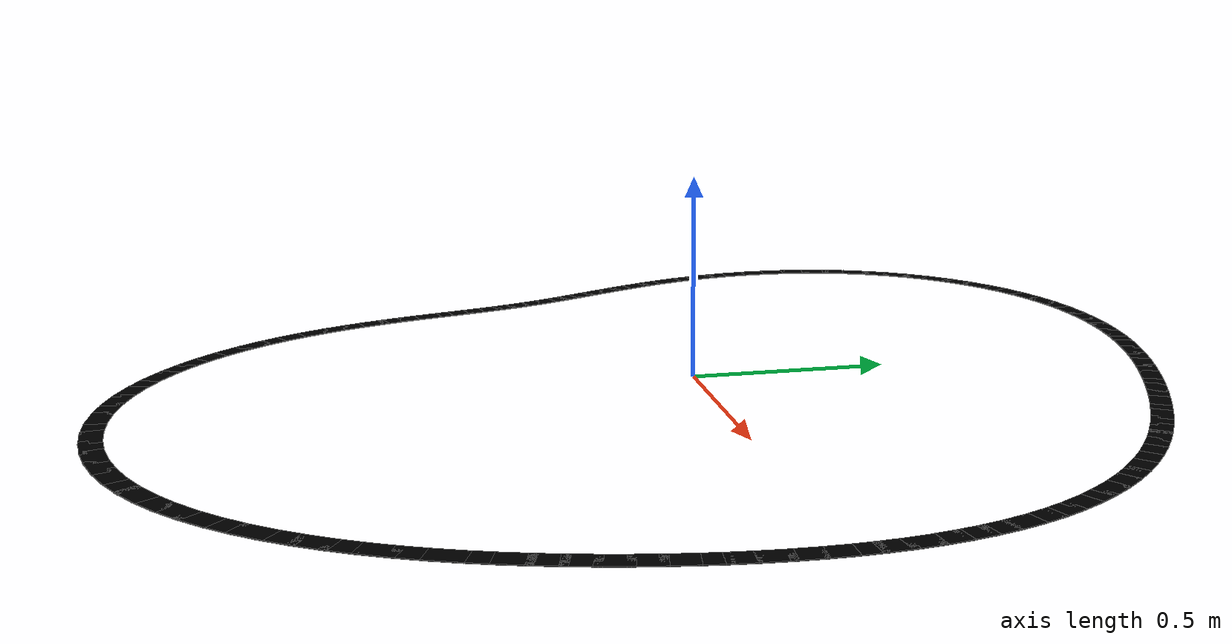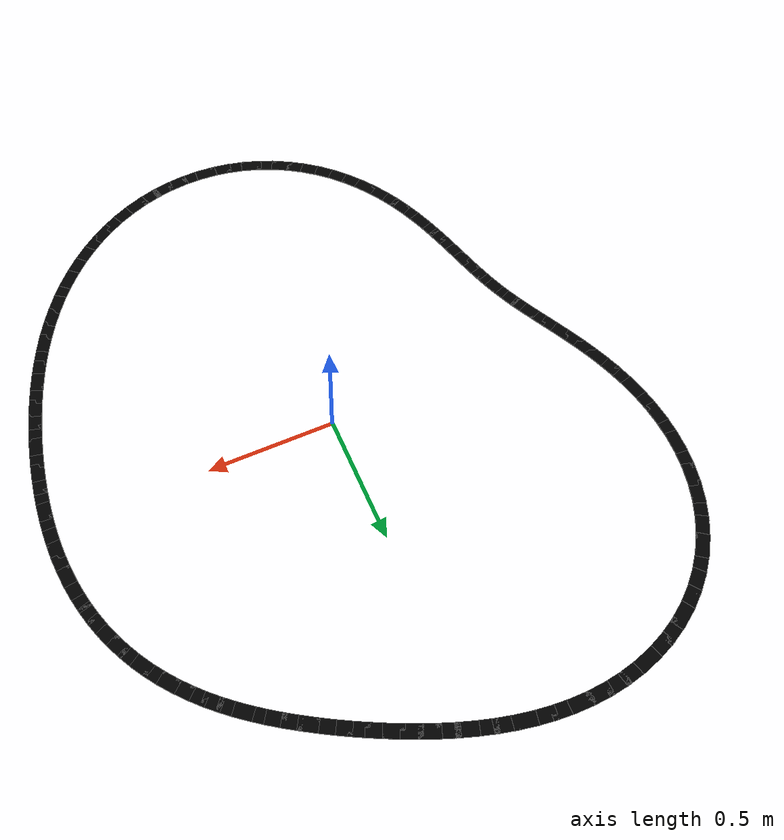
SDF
<?xml version="1.0"?>
<!-- GENERATED by scripts/generate_track.py — edit that script, not this file. -->
<sdf version="1.8">
  <model name="track_line">
    <static>true</static>
    <link name="link">
      <visual name="seg_0">
        <pose>1.1018 0.0271 0.003 0 0 1.5873</pose>
        <geometry>
          <box><size>0.0703 0.05 0.002</size></box>
        </geometry>
        <material>
          <ambient>0 0 0 1</ambient>
          <diffuse>0 0 0 1</diffuse>
        </material>
      </visual>
      <visual name="seg_1">
        <pose>1.0998 0.0811 0.003 0 0 1.6277</pose>
        <geometry>
          <box><size>0.0704 0.05 0.002</size></box>
        </geometry>
        <material>
          <ambient>0 0 0 1</ambient>
          <diffuse>0 0 0 1</diffuse>
        </material>
      </visual>
      <visual name="seg_2">
        <pose>1.0956 0.1351 0.003 0 0 1.6711</pose>
        <geometry>
          <box><size>0.0705 0.05 0.002</size></box>
        </geometry>
        <material>
          <ambient>0 0 0 1</ambient>
          <diffuse>0 0 0 1</diffuse>
        </material>
      </visual>
      <visual name="seg_3">
        <pose>1.0889 0.1890 0.003 0 0 1.7174</pose>
        <geometry>
          <box><size>0.0706 0.05 0.002</size></box>
        </geometry>
        <material>
          <ambient>0 0 0 1</ambient>
          <diffuse>0 0 0 1</diffuse>
        </material>
      </visual>
      <visual name="seg_4">
        <pose>1.0796 0.2425 0.003 0 0 1.7664</pose>
        <geometry>
          <box><size>0.0706 0.05 0.002</size></box>
        </geometry>
        <material>
          <ambient>0 0 0 1</ambient>
          <diffuse>0 0 0 1</diffuse>
        </material>
      </visual>
      <visual name="seg_5">
        <pose>1.0677 0.2955 0.003 0 0 1.8178</pose>
        <geometry>
          <box><size>0.0707 0.05 0.002</size></box>
        </geometry>
        <material>
          <ambient>0 0 0 1</ambient>
          <diffuse>0 0 0 1</diffuse>
        </material>
      </visual>
      <visual name="seg_6">
        <pose>1.0530 0.3479 0.003 0 0 1.8713</pose>
        <geometry>
          <box><size>0.0708 0.05 0.002</size></box>
        </geometry>
        <material>
          <ambient>0 0 0 1</ambient>
          <diffuse>0 0 0 1</diffuse>
        </material>
      </visual>
      <visual name="seg_7">
        <pose>1.0355 0.3994 0.003 0 0 1.9264</pose>
        <geometry>
          <box><size>0.0708 0.05 0.002</size></box>
        </geometry>
        <material>
          <ambient>0 0 0 1</ambient>
          <diffuse>0 0 0 1</diffuse>
        </material>
      </visual>
      <visual name="seg_8">
        <pose>1.0151 0.4499 0.003 0 0 1.9827</pose>
        <geometry>
          <box><size>0.0709 0.05 0.002</size></box>
        </geometry>
        <material>
          <ambient>0 0 0 1</ambient>
          <diffuse>0 0 0 1</diffuse>
        </material>
      </visual>
      <visual name="seg_9">
        <pose>0.9918 0.4992 0.003 0 0 2.0395</pose>
        <geometry>
          <box><size>0.0709 0.05 0.002</size></box>
        </geometry>
        <material>
          <ambient>0 0 0 1</ambient>
          <diffuse>0 0 0 1</diffuse>
        </material>
      </visual>
      <visual name="seg_10">
        <pose>0.9658 0.5471 0.003 0 0 2.0965</pose>
        <geometry>
          <box><size>0.0709 0.05 0.002</size></box>
        </geometry>
        <material>
          <ambient>0 0 0 1</ambient>
          <diffuse>0 0 0 1</diffuse>
        </material>
      </visual>
      <visual name="seg_11">
        <pose>0.9372 0.5935 0.003 0 0 2.1529</pose>
        <geometry>
          <box><size>0.0708 0.05 0.002</size></box>
        </geometry>
        <material>
          <ambient>0 0 0 1</ambient>
          <diffuse>0 0 0 1</diffuse>
        </material>
      </visual>
      <visual name="seg_12">
        <pose>0.9060 0.6381 0.003 0 0 2.2082</pose>
        <geometry>
          <box><size>0.0708 0.05 0.002</size></box>
        </geometry>
        <material>
          <ambient>0 0 0 1</ambient>
          <diffuse>0 0 0 1</diffuse>
        </material>
      </visual>
      <visual name="seg_13">
        <pose>0.8725 0.6809 0.003 0 0 2.2618</pose>
        <geometry>
          <box><size>0.0707 0.05 0.002</size></box>
        </geometry>
        <material>
          <ambient>0 0 0 1</ambient>
          <diffuse>0 0 0 1</diffuse>
        </material>
      </visual>
      <visual name="seg_14">
        <pose>0.8368 0.7218 0.003 0 0 2.3131</pose>
        <geometry>
          <box><size>0.0706 0.05 0.002</size></box>
        </geometry>
        <material>
          <ambient>0 0 0 1</ambient>
          <diffuse>0 0 0 1</diffuse>
        </material>
      </visual>
      <visual name="seg_15">
        <pose>0.7992 0.7609 0.003 0 0 2.3617</pose>
        <geometry>
          <box><size>0.0705 0.05 0.002</size></box>
        </geometry>
        <material>
          <ambient>0 0 0 1</ambient>
          <diffuse>0 0 0 1</diffuse>
        </material>
      </visual>
      <visual name="seg_16">
        <pose>0.7599 0.7981 0.003 0 0 2.4072</pose>
        <geometry>
          <box><size>0.0704 0.05 0.002</size></box>
        </geometry>
        <material>
          <ambient>0 0 0 1</ambient>
          <diffuse>0 0 0 1</diffuse>
        </material>
      </visual>
      <visual name="seg_17">
        <pose>0.7190 0.8335 0.003 0 0 2.4492</pose>
        <geometry>
          <box><size>0.0703 0.05 0.002</size></box>
        </geometry>
        <material>
          <ambient>0 0 0 1</ambient>
          <diffuse>0 0 0 1</diffuse>
        </material>
      </visual>
      <visual name="seg_18">
        <pose>0.6768 0.8672 0.003 0 0 2.4875</pose>
        <geometry>
          <box><size>0.0702 0.05 0.002</size></box>
        </geometry>
        <material>
          <ambient>0 0 0 1</ambient>
          <diffuse>0 0 0 1</diffuse>
        </material>
      </visual>
      <visual name="seg_19">
        <pose>0.6333 0.8993 0.003 0 0 2.5220</pose>
        <geometry>
          <box><size>0.0702 0.05 0.002</size></box>
        </geometry>
        <material>
          <ambient>0 0 0 1</ambient>
          <diffuse>0 0 0 1</diffuse>
        </material>
      </visual>
      <visual name="seg_20">
        <pose>0.5889 0.9300 0.003 0 0 2.5529</pose>
        <geometry>
          <box><size>0.0703 0.05 0.002</size></box>
        </geometry>
        <material>
          <ambient>0 0 0 1</ambient>
          <diffuse>0 0 0 1</diffuse>
        </material>
      </visual>
      <visual name="seg_21">
        <pose>0.5435 0.9594 0.003 0 0 2.5802</pose>
        <geometry>
          <box><size>0.0705 0.05 0.002</size></box>
        </geometry>
        <material>
          <ambient>0 0 0 1</ambient>
          <diffuse>0 0 0 1</diffuse>
        </material>
      </visual>
      <visual name="seg_22">
        <pose>0.4971 0.9877 0.003 0 0 2.6046</pose>
        <geometry>
          <box><size>0.0708 0.05 0.002</size></box>
        </geometry>
        <material>
          <ambient>0 0 0 1</ambient>
          <diffuse>0 0 0 1</diffuse>
        </material>
      </visual>
      <visual name="seg_23">
        <pose>0.4499 1.0152 0.003 0 0 2.6266</pose>
        <geometry>
          <box><size>0.0712 0.05 0.002</size></box>
        </geometry>
        <material>
          <ambient>0 0 0 1</ambient>
          <diffuse>0 0 0 1</diffuse>
        </material>
      </visual>
      <visual name="seg_24">
        <pose>0.4018 1.0418 0.003 0 0 2.6469</pose>
        <geometry>
          <box><size>0.0718 0.05 0.002</size></box>
        </geometry>
        <material>
          <ambient>0 0 0 1</ambient>
          <diffuse>0 0 0 1</diffuse>
        </material>
      </visual>
      <visual name="seg_25">
        <pose>0.3526 1.0677 0.003 0 0 2.6664</pose>
        <geometry>
          <box><size>0.0726 0.05 0.002</size></box>
        </geometry>
        <material>
          <ambient>0 0 0 1</ambient>
          <diffuse>0 0 0 1</diffuse>
        </material>
      </visual>
      <visual name="seg_26">
        <pose>0.3023 1.0929 0.003 0 0 2.6860</pose>
        <geometry>
          <box><size>0.0736 0.05 0.002</size></box>
        </geometry>
        <material>
          <ambient>0 0 0 1</ambient>
          <diffuse>0 0 0 1</diffuse>
        </material>
      </visual>
      <visual name="seg_27">
        <pose>0.2508 1.1175 0.003 0 0 2.7068</pose>
        <geometry>
          <box><size>0.0748 0.05 0.002</size></box>
        </geometry>
        <material>
          <ambient>0 0 0 1</ambient>
          <diffuse>0 0 0 1</diffuse>
        </material>
      </visual>
      <visual name="seg_28">
        <pose>0.1979 1.1413 0.003 0 0 2.7295</pose>
        <geometry>
          <box><size>0.0761 0.05 0.002</size></box>
        </geometry>
        <material>
          <ambient>0 0 0 1</ambient>
          <diffuse>0 0 0 1</diffuse>
        </material>
      </visual>
      <visual name="seg_29">
        <pose>0.1434 1.1643 0.003 0 0 2.7551</pose>
        <geometry>
          <box><size>0.0776 0.05 0.002</size></box>
        </geometry>
        <material>
          <ambient>0 0 0 1</ambient>
          <diffuse>0 0 0 1</diffuse>
        </material>
      </visual>
      <visual name="seg_30">
        <pose>0.0873 1.1862 0.003 0 0 2.7841</pose>
        <geometry>
          <box><size>0.0791 0.05 0.002</size></box>
        </geometry>
        <material>
          <ambient>0 0 0 1</ambient>
          <diffuse>0 0 0 1</diffuse>
        </material>
      </visual>
      <visual name="seg_31">
        <pose>0.0294 1.2067 0.003 0 0 2.8173</pose>
        <geometry>
          <box><size>0.0806 0.05 0.002</size></box>
        </geometry>
        <material>
          <ambient>0 0 0 1</ambient>
          <diffuse>0 0 0 1</diffuse>
        </material>
      </visual>
      <visual name="seg_32">
        <pose>-0.0303 1.2255 0.003 0 0 2.8549</pose>
        <geometry>
          <box><size>0.0822 0.05 0.002</size></box>
        </geometry>
        <material>
          <ambient>0 0 0 1</ambient>
          <diffuse>0 0 0 1</diffuse>
        </material>
      </visual>
      <visual name="seg_33">
        <pose>-0.0919 1.2423 0.003 0 0 2.8974</pose>
        <geometry>
          <box><size>0.0837 0.05 0.002</size></box>
        </geometry>
        <material>
          <ambient>0 0 0 1</ambient>
          <diffuse>0 0 0 1</diffuse>
        </material>
      </visual>
      <visual name="seg_34">
        <pose>-0.1552 1.2565 0.003 0 0 2.9449</pose>
        <geometry>
          <box><size>0.0851 0.05 0.002</size></box>
        </geometry>
        <material>
          <ambient>0 0 0 1</ambient>
          <diffuse>0 0 0 1</diffuse>
        </material>
      </visual>
      <visual name="seg_35">
        <pose>-0.2202 1.2676 0.003 0 0 2.9976</pose>
        <geometry>
          <box><size>0.0864 0.05 0.002</size></box>
        </geometry>
        <material>
          <ambient>0 0 0 1</ambient>
          <diffuse>0 0 0 1</diffuse>
        </material>
      </visual>
      <visual name="seg_36">
        <pose>-0.2866 1.2753 0.003 0 0 3.0554</pose>
        <geometry>
          <box><size>0.0875 0.05 0.002</size></box>
        </geometry>
        <material>
          <ambient>0 0 0 1</ambient>
          <diffuse>0 0 0 1</diffuse>
        </material>
      </visual>
      <visual name="seg_37">
        <pose>-0.3542 1.2790 0.003 0 0 3.1185</pose>
        <geometry>
          <box><size>0.0885 0.05 0.002</size></box>
        </geometry>
        <material>
          <ambient>0 0 0 1</ambient>
          <diffuse>0 0 0 1</diffuse>
        </material>
      </visual>
      <visual name="seg_38">
        <pose>-0.4225 1.2782 0.003 0 0 -3.0965</pose>
        <geometry>
          <box><size>0.0893 0.05 0.002</size></box>
        </geometry>
        <material>
          <ambient>0 0 0 1</ambient>
          <diffuse>0 0 0 1</diffuse>
        </material>
      </visual>
      <visual name="seg_39">
        <pose>-0.4911 1.2726 0.003 0 0 -3.0233</pose>
        <geometry>
          <box><size>0.0899 0.05 0.002</size></box>
        </geometry>
        <material>
          <ambient>0 0 0 1</ambient>
          <diffuse>0 0 0 1</diffuse>
        </material>
      </visual>
      <visual name="seg_40">
        <pose>-0.5595 1.2617 0.003 0 0 -2.9453</pose>
        <geometry>
          <box><size>0.0903 0.05 0.002</size></box>
        </geometry>
        <material>
          <ambient>0 0 0 1</ambient>
          <diffuse>0 0 0 1</diffuse>
        </material>
      </visual>
      <visual name="seg_41">
        <pose>-0.6270 1.2454 0.003 0 0 -2.8627</pose>
        <geometry>
          <box><size>0.0906 0.05 0.002</size></box>
        </geometry>
        <material>
          <ambient>0 0 0 1</ambient>
          <diffuse>0 0 0 1</diffuse>
        </material>
      </visual>
      <visual name="seg_42">
        <pose>-0.6931 1.2233 0.003 0 0 -2.7758</pose>
        <geometry>
          <box><size>0.0908 0.05 0.002</size></box>
        </geometry>
        <material>
          <ambient>0 0 0 1</ambient>
          <diffuse>0 0 0 1</diffuse>
        </material>
      </visual>
      <visual name="seg_43">
        <pose>-0.7571 1.1954 0.003 0 0 -2.6852</pose>
        <geometry>
          <box><size>0.0908 0.05 0.002</size></box>
        </geometry>
        <material>
          <ambient>0 0 0 1</ambient>
          <diffuse>0 0 0 1</diffuse>
        </material>
      </visual>
      <visual name="seg_44">
        <pose>-0.8182 1.1617 0.003 0 0 -2.5912</pose>
        <geometry>
          <box><size>0.0909 0.05 0.002</size></box>
        </geometry>
        <material>
          <ambient>0 0 0 1</ambient>
          <diffuse>0 0 0 1</diffuse>
        </material>
      </visual>
      <visual name="seg_45">
        <pose>-0.8759 1.1224 0.003 0 0 -2.4946</pose>
        <geometry>
          <box><size>0.0909 0.05 0.002</size></box>
        </geometry>
        <material>
          <ambient>0 0 0 1</ambient>
          <diffuse>0 0 0 1</diffuse>
        </material>
      </visual>
      <visual name="seg_46">
        <pose>-0.9295 1.0776 0.003 0 0 -2.3962</pose>
        <geometry>
          <box><size>0.0909 0.05 0.002</size></box>
        </geometry>
        <material>
          <ambient>0 0 0 1</ambient>
          <diffuse>0 0 0 1</diffuse>
        </material>
      </visual>
      <visual name="seg_47">
        <pose>-0.9784 1.0277 0.003 0 0 -2.2965</pose>
        <geometry>
          <box><size>0.0909 0.05 0.002</size></box>
        </geometry>
        <material>
          <ambient>0 0 0 1</ambient>
          <diffuse>0 0 0 1</diffuse>
        </material>
      </visual>
      <visual name="seg_48">
        <pose>-1.0221 0.9733 0.003 0 0 -2.1967</pose>
        <geometry>
          <box><size>0.0909 0.05 0.002</size></box>
        </geometry>
        <material>
          <ambient>0 0 0 1</ambient>
          <diffuse>0 0 0 1</diffuse>
        </material>
      </visual>
      <visual name="seg_49">
        <pose>-1.0601 0.9147 0.003 0 0 -2.0973</pose>
        <geometry>
          <box><size>0.0909 0.05 0.002</size></box>
        </geometry>
        <material>
          <ambient>0 0 0 1</ambient>
          <diffuse>0 0 0 1</diffuse>
        </material>
      </visual>
      <visual name="seg_50">
        <pose>-1.0922 0.8526 0.003 0 0 -1.9994</pose>
        <geometry>
          <box><size>0.0909 0.05 0.002</size></box>
        </geometry>
        <material>
          <ambient>0 0 0 1</ambient>
          <diffuse>0 0 0 1</diffuse>
        </material>
      </visual>
      <visual name="seg_51">
        <pose>-1.1182 0.7878 0.003 0 0 -1.9036</pose>
        <geometry>
          <box><size>0.0909 0.05 0.002</size></box>
        </geometry>
        <material>
          <ambient>0 0 0 1</ambient>
          <diffuse>0 0 0 1</diffuse>
        </material>
      </visual>
      <visual name="seg_52">
        <pose>-1.1379 0.7209 0.003 0 0 -1.8107</pose>
        <geometry>
          <box><size>0.0907 0.05 0.002</size></box>
        </geometry>
        <material>
          <ambient>0 0 0 1</ambient>
          <diffuse>0 0 0 1</diffuse>
        </material>
      </visual>
      <visual name="seg_53">
        <pose>-1.1514 0.6526 0.003 0 0 -1.7214</pose>
        <geometry>
          <box><size>0.0904 0.05 0.002</size></box>
        </geometry>
        <material>
          <ambient>0 0 0 1</ambient>
          <diffuse>0 0 0 1</diffuse>
        </material>
      </visual>
      <visual name="seg_54">
        <pose>-1.1589 0.5837 0.003 0 0 -1.6360</pose>
        <geometry>
          <box><size>0.0900 0.05 0.002</size></box>
        </geometry>
        <material>
          <ambient>0 0 0 1</ambient>
          <diffuse>0 0 0 1</diffuse>
        </material>
      </visual>
      <visual name="seg_55">
        <pose>-1.1606 0.5148 0.003 0 0 -1.5552</pose>
        <geometry>
          <box><size>0.0893 0.05 0.002</size></box>
        </geometry>
        <material>
          <ambient>0 0 0 1</ambient>
          <diffuse>0 0 0 1</diffuse>
        </material>
      </visual>
      <visual name="seg_56">
        <pose>-1.1570 0.4467 0.003 0 0 -1.4794</pose>
        <geometry>
          <box><size>0.0883 0.05 0.002</size></box>
        </geometry>
        <material>
          <ambient>0 0 0 1</ambient>
          <diffuse>0 0 0 1</diffuse>
        </material>
      </visual>
      <visual name="seg_57">
        <pose>-1.1485 0.3798 0.003 0 0 -1.4089</pose>
        <geometry>
          <box><size>0.0871 0.05 0.002</size></box>
        </geometry>
        <material>
          <ambient>0 0 0 1</ambient>
          <diffuse>0 0 0 1</diffuse>
        </material>
      </visual>
      <visual name="seg_58">
        <pose>-1.1357 0.3147 0.003 0 0 -1.3442</pose>
        <geometry>
          <box><size>0.0855 0.05 0.002</size></box>
        </geometry>
        <material>
          <ambient>0 0 0 1</ambient>
          <diffuse>0 0 0 1</diffuse>
        </material>
      </visual>
      <visual name="seg_59">
        <pose>-1.1192 0.2517 0.003 0 0 -1.2858</pose>
        <geometry>
          <box><size>0.0837 0.05 0.002</size></box>
        </geometry>
        <material>
          <ambient>0 0 0 1</ambient>
          <diffuse>0 0 0 1</diffuse>
        </material>
      </visual>
      <visual name="seg_60">
        <pose>-1.0998 0.1912 0.003 0 0 -1.2340</pose>
        <geometry>
          <box><size>0.0816 0.05 0.002</size></box>
        </geometry>
        <material>
          <ambient>0 0 0 1</ambient>
          <diffuse>0 0 0 1</diffuse>
        </material>
      </visual>
      <visual name="seg_61">
        <pose>-1.0781 0.1333 0.003 0 0 -1.1894</pose>
        <geometry>
          <box><size>0.0792 0.05 0.002</size></box>
        </geometry>
        <material>
          <ambient>0 0 0 1</ambient>
          <diffuse>0 0 0 1</diffuse>
        </material>
      </visual>
      <visual name="seg_62">
        <pose>-1.0548 0.0781 0.003 0 0 -1.1527</pose>
        <geometry>
          <box><size>0.0766 0.05 0.002</size></box>
        </geometry>
        <material>
          <ambient>0 0 0 1</ambient>
          <diffuse>0 0 0 1</diffuse>
        </material>
      </visual>
      <visual name="seg_63">
        <pose>-1.0306 0.0256 0.003 0 0 -1.1244</pose>
        <geometry>
          <box><size>0.0738 0.05 0.002</size></box>
        </geometry>
        <material>
          <ambient>0 0 0 1</ambient>
          <diffuse>0 0 0 1</diffuse>
        </material>
      </visual>
      <visual name="seg_64">
        <pose>-1.0061 -0.0244 0.003 0 0 -1.1052</pose>
        <geometry>
          <box><size>0.0710 0.05 0.002</size></box>
        </geometry>
        <material>
          <ambient>0 0 0 1</ambient>
          <diffuse>0 0 0 1</diffuse>
        </material>
      </visual>
      <visual name="seg_65">
        <pose>-0.9818 -0.0722 0.003 0 0 -1.0956</pose>
        <geometry>
          <box><size>0.0683 0.05 0.002</size></box>
        </geometry>
        <material>
          <ambient>0 0 0 1</ambient>
          <diffuse>0 0 0 1</diffuse>
        </material>
      </visual>
      <visual name="seg_66">
        <pose>-0.9582 -0.1180 0.003 0 0 -1.0960</pose>
        <geometry>
          <box><size>0.0657 0.05 0.002</size></box>
        </geometry>
        <material>
          <ambient>0 0 0 1</ambient>
          <diffuse>0 0 0 1</diffuse>
        </material>
      </visual>
      <visual name="seg_67">
        <pose>-0.9358 -0.1622 0.003 0 0 -1.1060</pose>
        <geometry>
          <box><size>0.0633 0.05 0.002</size></box>
        </geometry>
        <material>
          <ambient>0 0 0 1</ambient>
          <diffuse>0 0 0 1</diffuse>
        </material>
      </visual>
      <visual name="seg_68">
        <pose>-0.9147 -0.2053 0.003 0 0 -1.1251</pose>
        <geometry>
          <box><size>0.0614 0.05 0.002</size></box>
        </geometry>
        <material>
          <ambient>0 0 0 1</ambient>
          <diffuse>0 0 0 1</diffuse>
        </material>
      </visual>
      <visual name="seg_69">
        <pose>-0.8951 -0.2476 0.003 0 0 -1.1515</pose>
        <geometry>
          <box><size>0.0599 0.05 0.002</size></box>
        </geometry>
        <material>
          <ambient>0 0 0 1</ambient>
          <diffuse>0 0 0 1</diffuse>
        </material>
      </visual>
      <visual name="seg_70">
        <pose>-0.8771 -0.2897 0.003 0 0 -1.1827</pose>
        <geometry>
          <box><size>0.0591 0.05 0.002</size></box>
        </geometry>
        <material>
          <ambient>0 0 0 1</ambient>
          <diffuse>0 0 0 1</diffuse>
        </material>
      </visual>
      <visual name="seg_71">
        <pose>-0.8606 -0.3320 0.003 0 0 -1.2157</pose>
        <geometry>
          <box><size>0.0589 0.05 0.002</size></box>
        </geometry>
        <material>
          <ambient>0 0 0 1</ambient>
          <diffuse>0 0 0 1</diffuse>
        </material>
      </visual>
      <visual name="seg_72">
        <pose>-0.8455 -0.3749 0.003 0 0 -1.2470</pose>
        <geometry>
          <box><size>0.0593 0.05 0.002</size></box>
        </geometry>
        <material>
          <ambient>0 0 0 1</ambient>
          <diffuse>0 0 0 1</diffuse>
        </material>
      </visual>
      <visual name="seg_73">
        <pose>-0.8315 -0.4186 0.003 0 0 -1.2736</pose>
        <geometry>
          <box><size>0.0603 0.05 0.002</size></box>
        </geometry>
        <material>
          <ambient>0 0 0 1</ambient>
          <diffuse>0 0 0 1</diffuse>
        </material>
      </visual>
      <visual name="seg_74">
        <pose>-0.8182 -0.4636 0.003 0 0 -1.2928</pose>
        <geometry>
          <box><size>0.0618 0.05 0.002</size></box>
        </geometry>
        <material>
          <ambient>0 0 0 1</ambient>
          <diffuse>0 0 0 1</diffuse>
        </material>
      </visual>
      <visual name="seg_75">
        <pose>-0.8052 -0.5101 0.003 0 0 -1.3033</pose>
        <geometry>
          <box><size>0.0636 0.05 0.002</size></box>
        </geometry>
        <material>
          <ambient>0 0 0 1</ambient>
          <diffuse>0 0 0 1</diffuse>
        </material>
      </visual>
      <visual name="seg_76">
        <pose>-0.7921 -0.5581 0.003 0 0 -1.3041</pose>
        <geometry>
          <box><size>0.0658 0.05 0.002</size></box>
        </geometry>
        <material>
          <ambient>0 0 0 1</ambient>
          <diffuse>0 0 0 1</diffuse>
        </material>
      </visual>
      <visual name="seg_77">
        <pose>-0.7783 -0.6077 0.003 0 0 -1.2954</pose>
        <geometry>
          <box><size>0.0681 0.05 0.002</size></box>
        </geometry>
        <material>
          <ambient>0 0 0 1</ambient>
          <diffuse>0 0 0 1</diffuse>
        </material>
      </visual>
      <visual name="seg_78">
        <pose>-0.7633 -0.6588 0.003 0 0 -1.2773</pose>
        <geometry>
          <box><size>0.0704 0.05 0.002</size></box>
        </geometry>
        <material>
          <ambient>0 0 0 1</ambient>
          <diffuse>0 0 0 1</diffuse>
        </material>
      </visual>
      <visual name="seg_79">
        <pose>-0.7467 -0.7113 0.003 0 0 -1.2505</pose>
        <geometry>
          <box><size>0.0728 0.05 0.002</size></box>
        </geometry>
        <material>
          <ambient>0 0 0 1</ambient>
          <diffuse>0 0 0 1</diffuse>
        </material>
      </visual>
      <visual name="seg_80">
        <pose>-0.7278 -0.7649 0.003 0 0 -1.2158</pose>
        <geometry>
          <box><size>0.0750 0.05 0.002</size></box>
        </geometry>
        <material>
          <ambient>0 0 0 1</ambient>
          <diffuse>0 0 0 1</diffuse>
        </material>
      </visual>
      <visual name="seg_81">
        <pose>-0.7063 -0.8193 0.003 0 0 -1.1739</pose>
        <geometry>
          <box><size>0.0771 0.05 0.002</size></box>
        </geometry>
        <material>
          <ambient>0 0 0 1</ambient>
          <diffuse>0 0 0 1</diffuse>
        </material>
      </visual>
      <visual name="seg_82">
        <pose>-0.6818 -0.8741 0.003 0 0 -1.1254</pose>
        <geometry>
          <box><size>0.0791 0.05 0.002</size></box>
        </geometry>
        <material>
          <ambient>0 0 0 1</ambient>
          <diffuse>0 0 0 1</diffuse>
        </material>
      </visual>
      <visual name="seg_83">
        <pose>-0.6538 -0.9289 0.003 0 0 -1.0710</pose>
        <geometry>
          <box><size>0.0808 0.05 0.002</size></box>
        </geometry>
        <material>
          <ambient>0 0 0 1</ambient>
          <diffuse>0 0 0 1</diffuse>
        </material>
      </visual>
      <visual name="seg_84">
        <pose>-0.6221 -0.9830 0.003 0 0 -1.0113</pose>
        <geometry>
          <box><size>0.0823 0.05 0.002</size></box>
        </geometry>
        <material>
          <ambient>0 0 0 1</ambient>
          <diffuse>0 0 0 1</diffuse>
        </material>
      </visual>
      <visual name="seg_85">
        <pose>-0.5865 -1.0359 0.003 0 0 -0.9469</pose>
        <geometry>
          <box><size>0.0836 0.05 0.002</size></box>
        </geometry>
        <material>
          <ambient>0 0 0 1</ambient>
          <diffuse>0 0 0 1</diffuse>
        </material>
      </visual>
      <visual name="seg_86">
        <pose>-0.5468 -1.0871 0.003 0 0 -0.8782</pose>
        <geometry>
          <box><size>0.0848 0.05 0.002</size></box>
        </geometry>
        <material>
          <ambient>0 0 0 1</ambient>
          <diffuse>0 0 0 1</diffuse>
        </material>
      </visual>
      <visual name="seg_87">
        <pose>-0.5032 -1.1360 0.003 0 0 -0.8056</pose>
        <geometry>
          <box><size>0.0857 0.05 0.002</size></box>
        </geometry>
        <material>
          <ambient>0 0 0 1</ambient>
          <diffuse>0 0 0 1</diffuse>
        </material>
      </visual>
      <visual name="seg_88">
        <pose>-0.4556 -1.1819 0.003 0 0 -0.7297</pose>
        <geometry>
          <box><size>0.0864 0.05 0.002</size></box>
        </geometry>
        <material>
          <ambient>0 0 0 1</ambient>
          <diffuse>0 0 0 1</diffuse>
        </material>
      </visual>
      <visual name="seg_89">
        <pose>-0.4042 -1.2243 0.003 0 0 -0.6508</pose>
        <geometry>
          <box><size>0.0870 0.05 0.002</size></box>
        </geometry>
        <material>
          <ambient>0 0 0 1</ambient>
          <diffuse>0 0 0 1</diffuse>
        </material>
      </visual>
      <visual name="seg_90">
        <pose>-0.3492 -1.2628 0.003 0 0 -0.5693</pose>
        <geometry>
          <box><size>0.0875 0.05 0.002</size></box>
        </geometry>
        <material>
          <ambient>0 0 0 1</ambient>
          <diffuse>0 0 0 1</diffuse>
        </material>
      </visual>
      <visual name="seg_91">
        <pose>-0.2910 -1.2967 0.003 0 0 -0.4858</pose>
        <geometry>
          <box><size>0.0879 0.05 0.002</size></box>
        </geometry>
        <material>
          <ambient>0 0 0 1</ambient>
          <diffuse>0 0 0 1</diffuse>
        </material>
      </visual>
      <visual name="seg_92">
        <pose>-0.2298 -1.3257 0.003 0 0 -0.4006</pose>
        <geometry>
          <box><size>0.0882 0.05 0.002</size></box>
        </geometry>
        <material>
          <ambient>0 0 0 1</ambient>
          <diffuse>0 0 0 1</diffuse>
        </material>
      </visual>
      <visual name="seg_93">
        <pose>-0.1663 -1.3494 0.003 0 0 -0.3142</pose>
        <geometry>
          <box><size>0.0884 0.05 0.002</size></box>
        </geometry>
        <material>
          <ambient>0 0 0 1</ambient>
          <diffuse>0 0 0 1</diffuse>
        </material>
      </visual>
      <visual name="seg_94">
        <pose>-0.1008 -1.3676 0.003 0 0 -0.2270</pose>
        <geometry>
          <box><size>0.0886 0.05 0.002</size></box>
        </geometry>
        <material>
          <ambient>0 0 0 1</ambient>
          <diffuse>0 0 0 1</diffuse>
        </material>
      </visual>
      <visual name="seg_95">
        <pose>-0.0338 -1.3800 0.003 0 0 -0.1395</pose>
        <geometry>
          <box><size>0.0887 0.05 0.002</size></box>
        </geometry>
        <material>
          <ambient>0 0 0 1</ambient>
          <diffuse>0 0 0 1</diffuse>
        </material>
      </visual>
      <visual name="seg_96">
        <pose>0.0341 -1.3865 0.003 0 0 -0.0521</pose>
        <geometry>
          <box><size>0.0888 0.05 0.002</size></box>
        </geometry>
        <material>
          <ambient>0 0 0 1</ambient>
          <diffuse>0 0 0 1</diffuse>
        </material>
      </visual>
      <visual name="seg_97">
        <pose>0.1024 -1.3871 0.003 0 0 0.0348</pose>
        <geometry>
          <box><size>0.0888 0.05 0.002</size></box>
        </geometry>
        <material>
          <ambient>0 0 0 1</ambient>
          <diffuse>0 0 0 1</diffuse>
        </material>
      </visual>
      <visual name="seg_98">
        <pose>0.1704 -1.3818 0.003 0 0 0.1207</pose>
        <geometry>
          <box><size>0.0889 0.05 0.002</size></box>
        </geometry>
        <material>
          <ambient>0 0 0 1</ambient>
          <diffuse>0 0 0 1</diffuse>
        </material>
      </visual>
      <visual name="seg_99">
        <pose>0.2378 -1.3707 0.003 0 0 0.2053</pose>
        <geometry>
          <box><size>0.0888 0.05 0.002</size></box>
        </geometry>
        <material>
          <ambient>0 0 0 1</ambient>
          <diffuse>0 0 0 1</diffuse>
        </material>
      </visual>
      <visual name="seg_100">
        <pose>0.3040 -1.3541 0.003 0 0 0.2883</pose>
        <geometry>
          <box><size>0.0888 0.05 0.002</size></box>
        </geometry>
        <material>
          <ambient>0 0 0 1</ambient>
          <diffuse>0 0 0 1</diffuse>
        </material>
      </visual>
      <visual name="seg_101">
        <pose>0.3685 -1.3320 0.003 0 0 0.3693</pose>
        <geometry>
          <box><size>0.0887 0.05 0.002</size></box>
        </geometry>
        <material>
          <ambient>0 0 0 1</ambient>
          <diffuse>0 0 0 1</diffuse>
        </material>
      </visual>
      <visual name="seg_102">
        <pose>0.4310 -1.3050 0.003 0 0 0.4481</pose>
        <geometry>
          <box><size>0.0885 0.05 0.002</size></box>
        </geometry>
        <material>
          <ambient>0 0 0 1</ambient>
          <diffuse>0 0 0 1</diffuse>
        </material>
      </visual>
      <visual name="seg_103">
        <pose>0.4910 -1.2733 0.003 0 0 0.5243</pose>
        <geometry>
          <box><size>0.0882 0.05 0.002</size></box>
        </geometry>
        <material>
          <ambient>0 0 0 1</ambient>
          <diffuse>0 0 0 1</diffuse>
        </material>
      </visual>
      <visual name="seg_104">
        <pose>0.5483 -1.2373 0.003 0 0 0.5979</pose>
        <geometry>
          <box><size>0.0878 0.05 0.002</size></box>
        </geometry>
        <material>
          <ambient>0 0 0 1</ambient>
          <diffuse>0 0 0 1</diffuse>
        </material>
      </visual>
      <visual name="seg_105">
        <pose>0.6026 -1.1975 0.003 0 0 0.6686</pose>
        <geometry>
          <box><size>0.0873 0.05 0.002</size></box>
        </geometry>
        <material>
          <ambient>0 0 0 1</ambient>
          <diffuse>0 0 0 1</diffuse>
        </material>
      </visual>
      <visual name="seg_106">
        <pose>0.6537 -1.1542 0.003 0 0 0.7362</pose>
        <geometry>
          <box><size>0.0868 0.05 0.002</size></box>
        </geometry>
        <material>
          <ambient>0 0 0 1</ambient>
          <diffuse>0 0 0 1</diffuse>
        </material>
      </visual>
      <visual name="seg_107">
        <pose>0.7014 -1.1080 0.003 0 0 0.8007</pose>
        <geometry>
          <box><size>0.0861 0.05 0.002</size></box>
        </geometry>
        <material>
          <ambient>0 0 0 1</ambient>
          <diffuse>0 0 0 1</diffuse>
        </material>
      </visual>
      <visual name="seg_108">
        <pose>0.7459 -1.0594 0.003 0 0 0.8619</pose>
        <geometry>
          <box><size>0.0853 0.05 0.002</size></box>
        </geometry>
        <material>
          <ambient>0 0 0 1</ambient>
          <diffuse>0 0 0 1</diffuse>
        </material>
      </visual>
      <visual name="seg_109">
        <pose>0.7869 -1.0086 0.003 0 0 0.9197</pose>
        <geometry>
          <box><size>0.0844 0.05 0.002</size></box>
        </geometry>
        <material>
          <ambient>0 0 0 1</ambient>
          <diffuse>0 0 0 1</diffuse>
        </material>
      </visual>
      <visual name="seg_110">
        <pose>0.8246 -0.9563 0.003 0 0 0.9740</pose>
        <geometry>
          <box><size>0.0834 0.05 0.002</size></box>
        </geometry>
        <material>
          <ambient>0 0 0 1</ambient>
          <diffuse>0 0 0 1</diffuse>
        </material>
      </visual>
      <visual name="seg_111">
        <pose>0.8591 -0.9026 0.003 0 0 1.0249</pose>
        <geometry>
          <box><size>0.0824 0.05 0.002</size></box>
        </geometry>
        <material>
          <ambient>0 0 0 1</ambient>
          <diffuse>0 0 0 1</diffuse>
        </material>
      </visual>
      <visual name="seg_112">
        <pose>0.8905 -0.8481 0.003 0 0 1.0724</pose>
        <geometry>
          <box><size>0.0813 0.05 0.002</size></box>
        </geometry>
        <material>
          <ambient>0 0 0 1</ambient>
          <diffuse>0 0 0 1</diffuse>
        </material>
      </visual>
      <visual name="seg_113">
        <pose>0.9190 -0.7930 0.003 0 0 1.1164</pose>
        <geometry>
          <box><size>0.0801 0.05 0.002</size></box>
        </geometry>
        <material>
          <ambient>0 0 0 1</ambient>
          <diffuse>0 0 0 1</diffuse>
        </material>
      </visual>
      <visual name="seg_114">
        <pose>0.9447 -0.7375 0.003 0 0 1.1571</pose>
        <geometry>
          <box><size>0.0789 0.05 0.002</size></box>
        </geometry>
        <material>
          <ambient>0 0 0 1</ambient>
          <diffuse>0 0 0 1</diffuse>
        </material>
      </visual>
      <visual name="seg_115">
        <pose>0.9679 -0.6819 0.003 0 0 1.1946</pose>
        <geometry>
          <box><size>0.0777 0.05 0.002</size></box>
        </geometry>
        <material>
          <ambient>0 0 0 1</ambient>
          <diffuse>0 0 0 1</diffuse>
        </material>
      </visual>
      <visual name="seg_116">
        <pose>0.9887 -0.6263 0.003 0 0 1.2292</pose>
        <geometry>
          <box><size>0.0766 0.05 0.002</size></box>
        </geometry>
        <material>
          <ambient>0 0 0 1</ambient>
          <diffuse>0 0 0 1</diffuse>
        </material>
      </visual>
      <visual name="seg_117">
        <pose>1.0074 -0.5709 0.003 0 0 1.2612</pose>
        <geometry>
          <box><size>0.0755 0.05 0.002</size></box>
        </geometry>
        <material>
          <ambient>0 0 0 1</ambient>
          <diffuse>0 0 0 1</diffuse>
        </material>
      </visual>
      <visual name="seg_118">
        <pose>1.0242 -0.5157 0.003 0 0 1.2910</pose>
        <geometry>
          <box><size>0.0745 0.05 0.002</size></box>
        </geometry>
        <material>
          <ambient>0 0 0 1</ambient>
          <diffuse>0 0 0 1</diffuse>
        </material>
      </visual>
      <visual name="seg_119">
        <pose>1.0392 -0.4608 0.003 0 0 1.3191</pose>
        <geometry>
          <box><size>0.0736 0.05 0.002</size></box>
        </geometry>
        <material>
          <ambient>0 0 0 1</ambient>
          <diffuse>0 0 0 1</diffuse>
        </material>
      </visual>
      <visual name="seg_120">
        <pose>1.0525 -0.4061 0.003 0 0 1.3459</pose>
        <geometry>
          <box><size>0.0727 0.05 0.002</size></box>
        </geometry>
        <material>
          <ambient>0 0 0 1</ambient>
          <diffuse>0 0 0 1</diffuse>
        </material>
      </visual>
      <visual name="seg_121">
        <pose>1.0642 -0.3516 0.003 0 0 1.3721</pose>
        <geometry>
          <box><size>0.0721 0.05 0.002</size></box>
        </geometry>
        <material>
          <ambient>0 0 0 1</ambient>
          <diffuse>0 0 0 1</diffuse>
        </material>
      </visual>
      <visual name="seg_122">
        <pose>1.0743 -0.2974 0.003 0 0 1.3984</pose>
        <geometry>
          <box><size>0.0715 0.05 0.002</size></box>
        </geometry>
        <material>
          <ambient>0 0 0 1</ambient>
          <diffuse>0 0 0 1</diffuse>
        </material>
      </visual>
      <visual name="seg_123">
        <pose>1.0830 -0.2433 0.003 0 0 1.4252</pose>
        <geometry>
          <box><size>0.0710 0.05 0.002</size></box>
        </geometry>
        <material>
          <ambient>0 0 0 1</ambient>
          <diffuse>0 0 0 1</diffuse>
        </material>
      </visual>
      <visual name="seg_124">
        <pose>1.0902 -0.1892 0.003 0 0 1.4533</pose>
        <geometry>
          <box><size>0.0707 0.05 0.002</size></box>
        </geometry>
        <material>
          <ambient>0 0 0 1</ambient>
          <diffuse>0 0 0 1</diffuse>
        </material>
      </visual>
      <visual name="seg_125">
        <pose>1.0957 -0.1352 0.003 0 0 1.4832</pose>
        <geometry>
          <box><size>0.0705 0.05 0.002</size></box>
        </geometry>
        <material>
          <ambient>0 0 0 1</ambient>
          <diffuse>0 0 0 1</diffuse>
        </material>
      </visual>
      <visual name="seg_126">
        <pose>1.0996 -0.0811 0.003 0 0 1.5152</pose>
        <geometry>
          <box><size>0.0704 0.05 0.002</size></box>
        </geometry>
        <material>
          <ambient>0 0 0 1</ambient>
          <diffuse>0 0 0 1</diffuse>
        </material>
      </visual>
      <visual name="seg_127">
        <pose>1.1017 -0.0270 0.003 0 0 1.5499</pose>
        <geometry>
          <box><size>0.0703 0.05 0.002</size></box>
        </geometry>
        <material>
          <ambient>0 0 0 1</ambient>
          <diffuse>0 0 0 1</diffuse>
        </material>
      </visual>
    </link>
  </model>
</sdf>
